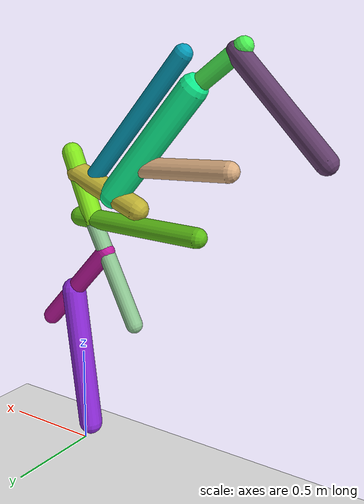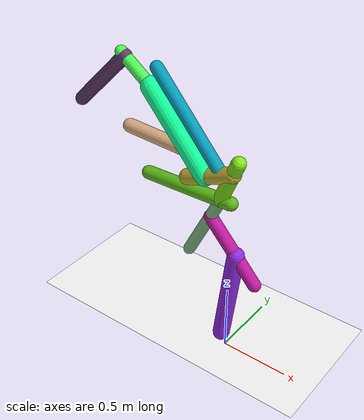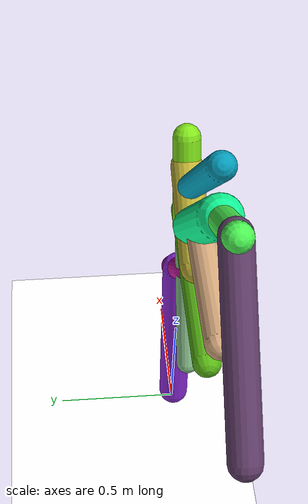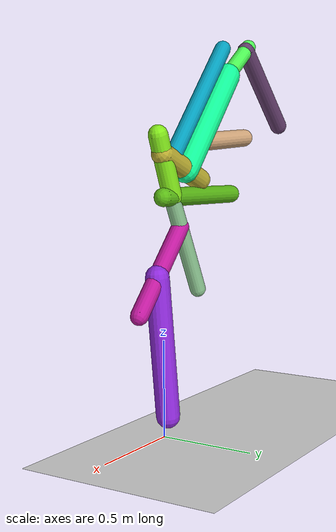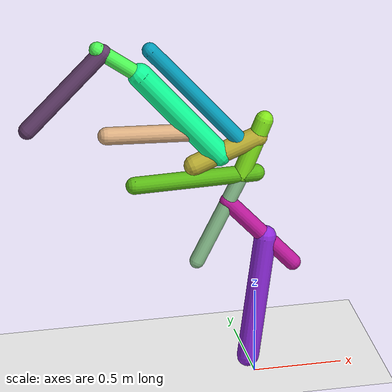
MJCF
<mujoco model="morphology">
  <option timestep="0.01"/>
  <default>
    <default class="/"/>
    <default class="0/"/>
    <default class="0/1/"/>
    <default class="0/1/2/"/>
    <default class="0/1/2/3/"/>
    <default class="0/1/2/4/"/>
    <default class="0/1/2/4/5/"/>
    <default class="0/1/2/4/5/6/"/>
    <default class="0/1/2/4/7/"/>
    <default class="0/8/"/>
    <default class="0/8/9/"/>
    <default class="0/8/9/10/"/>
  </default>
  <asset>
    <texture name="texplane" type="2d" builtin="checker" rgb1="0.10000000000000001 0.20000000000000001 0.29999999999999999" rgb2="0.20000000000000001 0.29999999999999999 0.40000000000000002" width="300" height="300"/>
    <material name="MatPlane" class="/" texture="texplane" texrepeat="20 20" specular="1" shininess="1" reflectance="0.5"/>
  </asset>
  <worldbody>
    <light name="//unnamed_light_0" class="/" directional="true" pos="0 0 1.5" dir="0 0 -1.3" cutoff="100" exponent="1" diffuse="1 1 1" specular="0.10000000000000001 0.10000000000000001 0.10000000000000001"/>
    <geom name="ground" class="/" type="plane" size="15 15 0.5" material="MatPlane" rgba="1 1 1 1"/>
    <site name="body" class="/" size="9.9999999999999995e-07 9.9999999999999995e-07 9.9999999999999995e-07" pos="0 0 1.2290807723999024"/>
    <body pos="0 0 1.2290807723999024" name="0/">
      <joint name="0/rootx/" class="/" type="slide" axis="1 0 0" limited="false" stiffness="0" armature="0" damping="0"/>
      <joint name="0/rootz/" class="/" type="slide" axis="0 0 1" limited="false" stiffness="0" armature="0" damping="0"/>
      <joint name="0/rooty/" class="/" type="hinge" axis="0 1 0" limited="false" stiffness="0" armature="0" damping="0"/>
      <geom name="0/geom" class="0/" type="capsule" contype="1" conaffinity="1" condim="3" size="0.048319554319540423" rgba="0.35576779238556178 0.72595017126344241 0.084409259810621529 1" friction="0.59999999999999998 0.10000000000000001 0.10000000000000001" fromto="0 0 0 -0.67901038469300068 0 -0.013148302453991567"/>
      <site name="0/end0" class="0/" size="0.0050000000000000001" pos="-0.67901038469300068 0 -0.013148302453991567"/>
      <site name="0/attach1" class="0/" size="9.9999999999999995e-07 9.9999999999999995e-07 9.9999999999999995e-07" pos="-0.083013045064329785 0 -0.0016074579251481233"/>
      <body pos="-0.083013045064329785 0 -0.0016074579251481233" name="0/1/">
        <geom name="0/1/geom" class="0/1/" type="capsule" contype="1" conaffinity="1" condim="3" size="0.050321376603639834" rgba="0.50986025282590974 0.9011389572687305 0.10339937053028847 1" friction="0.59999999999999998 0.10000000000000001 0.10000000000000001" fromto="0 0 0 0.12706588623334947 0 0.31361958927818678"/>
        <site name="0/1/end1" class="0/1/" size="0.0050000000000000001" pos="0.12706588623334947 0 0.31361958927818678"/>
        <site name="0/1/attach2" class="0/1/" size="9.9999999999999995e-07 9.9999999999999995e-07 9.9999999999999995e-07" pos="0.088313423870626309 0 0.2179721130752007"/>
        <body pos="0.088313423870626309 0 0.2179721130752007" name="0/1/2/">
          <joint name="0/1/2/joint/" class="0/1/" type="hinge" axis="0 1 0" limited="true" range="-53.446397081931188 53.446397081931188"/>
          <geom name="0/1/2/geom" class="0/1/2/" type="capsule" contype="1" conaffinity="1" condim="3" size="0.057435612012338919" rgba="0.74162066372640223 0.6874353247544629 0.1993417120017914 1" friction="0.59999999999999998 0.10000000000000001 0.10000000000000001" fromto="0 0 0 -0.35144873465990556 0 -0.13883899029156277"/>
          <site name="0/1/2/end2" class="0/1/2/" size="0.0050000000000000001" pos="-0.35144873465990556 0 -0.13883899029156277"/>
          <site name="0/1/2/attach3" class="0/1/2/" size="9.9999999999999995e-07 9.9999999999999995e-07 9.9999999999999995e-07" pos="-0.07970033426210979 0 -0.031485428295991415"/>
          <body pos="-0.07970033426210979 0 -0.031485428295991415" name="0/1/2/3/">
            <joint name="0/1/2/3/joint/" class="0/1/2/" type="hinge" axis="0 1 0" limited="true" range="-39.154495988855018 39.154495988855018"/>
            <geom name="0/1/2/3/geom" class="0/1/2/3/" type="capsule" contype="1" conaffinity="1" condim="3" size="0.044028028088819365" rgba="0.01482074405790812 0.6141069538759647 0.72888427348315243 1" friction="0.59999999999999998 0.10000000000000001 0.10000000000000001" fromto="0 0 0 -0.51469566091637708 0 0.59634295035730478"/>
            <site name="0/1/2/3/end3" class="0/1/2/3/" size="0.0050000000000000001" pos="-0.51469566091637708 0 0.59634295035730478"/>
          </body>
          <site name="0/1/2/attach4" class="0/1/2/" size="9.9999999999999995e-07 9.9999999999999995e-07 9.9999999999999995e-07" pos="-0.2142719543974243 0 -0.084647628124558089"/>
          <body pos="-0.2142719543974243 0 -0.084647628124558089" name="0/1/2/4/">
            <joint name="0/1/2/4/joint/" class="0/1/2/" type="hinge" axis="0 1 0" limited="true" range="-61.657352606252488 61.657352606252488"/>
            <geom name="0/1/2/4/geom" class="0/1/2/4/" type="capsule" contype="1" conaffinity="1" condim="3" size="0.068294231781972317" rgba="0.061303316188581869 0.98516712038563803 0.5906870361150911 1" friction="0.59999999999999998 0.10000000000000001 0.10000000000000001" fromto="0 0 0 -0.43467459664422015 0 0.50751606612288169"/>
            <site name="0/1/2/4/end4" class="0/1/2/4/" size="0.0050000000000000001" pos="-0.43467459664422015 0 0.50751606612288169"/>
            <site name="0/1/2/4/attach5" class="0/1/2/4/" size="9.9999999999999995e-07 9.9999999999999995e-07 9.9999999999999995e-07" pos="-0.43363315717004181 0 0.50630010533492542"/>
            <body pos="-0.43363315717004181 0 0.50630010533492542" name="0/1/2/4/5/">
              <joint name="0/1/2/4/5/joint/" class="0/1/2/4/" type="hinge" axis="0 1 0" limited="true" range="-33.993774893783929 33.993774893783929"/>
              <geom name="0/1/2/4/5/geom" class="0/1/2/4/5/" type="capsule" contype="1" conaffinity="1" condim="3" size="0.042666226415282969" rgba="0.29684240615926771 0.96625486527423798 0.32562907885267978 1" friction="0.59999999999999998 0.10000000000000001 0.10000000000000001" fromto="0 0 0 -0.2365970259354796 0 0.17454384920347932"/>
              <site name="0/1/2/4/5/end5" class="0/1/2/4/5/" size="0.0050000000000000001" pos="-0.2365970259354796 0 0.17454384920347932"/>
              <site name="0/1/2/4/5/attach6" class="0/1/2/4/5/" size="9.9999999999999995e-07 9.9999999999999995e-07 9.9999999999999995e-07" pos="-0.20737046482984894 0 0.15298264633464609"/>
              <body pos="-0.20737046482984894 0 0.15298264633464609" name="0/1/2/4/5/6/">
                <joint name="0/1/2/4/5/6/joint/" class="0/1/2/4/5/" type="hinge" axis="0 1 0" limited="true" range="-62.115795025787804 62.115795025787804"/>
                <geom name="0/1/2/4/5/6/geom" class="0/1/2/4/5/6/" type="capsule" contype="1" conaffinity="1" condim="3" size="0.048385690586880123" rgba="0.37816165489381837 0.23618716301444187 0.41188367350100319 1" friction="0.59999999999999998 0.10000000000000001 0.10000000000000001" fromto="0 0 0 -0.41476974845829645 0 -0.41768330315242408"/>
                <site name="0/1/2/4/5/6/end6" class="0/1/2/4/5/6/" size="0.0050000000000000001" pos="-0.41476974845829645 0 -0.41768330315242408"/>
              </body>
            </body>
            <site name="0/1/2/4/attach7" class="0/1/2/4/" size="9.9999999999999995e-07 9.9999999999999995e-07 9.9999999999999995e-07" pos="-0.12253175890061482 0 0.14306526475771295"/>
            <body pos="-0.12253175890061482 0 0.14306526475771295" name="0/1/2/4/7/">
              <joint name="0/1/2/4/7/joint/" class="0/1/2/4/" type="hinge" axis="0 1 0" limited="true" range="-50.421079630648954 50.421079630648954"/>
              <geom name="0/1/2/4/7/geom" class="0/1/2/4/7/" type="capsule" contype="1" conaffinity="1" condim="3" size="0.048786231812676509" rgba="0.85251948844571779 0.67624721697981549 0.49949763007549985 1" friction="0.59999999999999998 0.10000000000000001 0.10000000000000001" fromto="0 0 0 -0.49944742098326628 0 0.024640235209572703"/>
              <site name="0/1/2/4/7/end7" class="0/1/2/4/7/" size="0.0050000000000000001" pos="-0.49944742098326628 0 0.024640235209572703"/>
            </body>
          </body>
        </body>
      </body>
      <site name="0/attach8" class="0/" size="9.9999999999999995e-07 9.9999999999999995e-07 9.9999999999999995e-07" pos="-0.077170679787712124 0 -0.0014943268340258597"/>
      <body pos="-0.077170679787712124 0 -0.0014943268340258597" name="0/8/">
        <joint name="0/8/joint/" class="0/" type="hinge" axis="0 1 0" limited="true" range="-56.6897997790566 56.6897997790566"/>
        <geom name="0/8/geom" class="0/8/" type="capsule" contype="1" conaffinity="1" condim="3" size="0.041928676575135854" rgba="0.54257307204724348 0.76284368596431185 0.56073323200399083 1" friction="0.59999999999999998 0.10000000000000001 0.10000000000000001" fromto="0 0 0 -0.25243889989434004 0 -0.50458373792166777"/>
        <site name="0/8/end8" class="0/8/" size="0.0050000000000000001" pos="-0.25243889989434004 0 -0.50458373792166777"/>
        <site name="0/8/attach9" class="0/8/" size="9.9999999999999995e-07 9.9999999999999995e-07 9.9999999999999995e-07" pos="-0.079927979093250043 0 -0.15976285141583788"/>
        <body pos="-0.079927979093250043 0 -0.15976285141583788" name="0/8/9/">
          <joint name="0/8/9/joint/" class="0/8/" type="hinge" axis="0 1 0" limited="true" range="-47.719675357142876 47.719675357142876"/>
          <geom name="0/8/9/geom" class="0/8/9/" type="capsule" contype="1" conaffinity="1" condim="3" size="0.045993809345709236" rgba="0.74630732336633632 0.093714522318671944 0.61443481047823223 1" friction="0.59999999999999998 0.10000000000000001 0.10000000000000001" fromto="0 0 0 0.37007290386480607 0 -0.40854715582505957"/>
          <site name="0/8/9/end9" class="0/8/9/" size="0.0050000000000000001" pos="0.37007290386480607 0 -0.40854715582505957"/>
          <site name="0/8/9/attach10" class="0/8/9/" size="9.9999999999999995e-07 9.9999999999999995e-07 9.9999999999999995e-07" pos="0.21352423349084565 0 -0.23572306262195097"/>
          <body pos="0.21352423349084565 0 -0.23572306262195097" name="0/8/9/10/">
            <joint name="0/8/9/10/joint/" class="0/8/9/" type="hinge" axis="0 1 0" limited="true" range="-59.325801768277934 59.325801768277934"/>
            <geom name="0/8/9/10/geom" class="0/8/9/10/" type="capsule" contype="1" conaffinity="1" condim="3" size="0.0616212170751433" rgba="0.55995496418054558 0.16456659051565659 0.86143225971108317 1" friction="0.59999999999999998 0.10000000000000001 0.10000000000000001" fromto="0 0 0 -0.093909495631177453 0 -0.73210052905661815"/>
            <site name="0/8/9/10/end10" class="0/8/9/10/" size="0.0050000000000000001" pos="-0.093909495631177453 0 -0.73210052905661815"/>
          </body>
        </body>
      </body>
      <camera name="0/side" class="0/" mode="trackcom" pos="0.40000000000000002 -4 0.20000000000000001" quat="0.70699999999999996 0.70699999999999996 0 0"/>
    </body>
  </worldbody>
  <actuator>
    <motor name="0/1/2/motor" class="0/1/2/" ctrllimited="true" ctrlrange="-1 1" gear="71" joint="0/1/2/joint/"/>
    <motor name="0/1/2/3/motor" class="0/1/2/3/" ctrllimited="true" ctrlrange="-1 1" gear="52" joint="0/1/2/3/joint/"/>
    <motor name="0/1/2/4/motor" class="0/1/2/4/" ctrllimited="true" ctrlrange="-1 1" gear="64" joint="0/1/2/4/joint/"/>
    <motor name="0/1/2/4/5/motor" class="0/1/2/4/5/" ctrllimited="true" ctrlrange="-1 1" gear="68" joint="0/1/2/4/5/joint/"/>
    <motor name="0/1/2/4/5/6/motor" class="0/1/2/4/5/6/" ctrllimited="true" ctrlrange="-1 1" gear="63" joint="0/1/2/4/5/6/joint/"/>
    <motor name="0/1/2/4/7/motor" class="0/1/2/4/7/" ctrllimited="true" ctrlrange="-1 1" gear="89" joint="0/1/2/4/7/joint/"/>
    <motor name="0/8/motor" class="0/8/" ctrllimited="true" ctrlrange="-1 1" gear="73" joint="0/8/joint/"/>
    <motor name="0/8/9/motor" class="0/8/9/" ctrllimited="true" ctrlrange="-1 1" gear="85" joint="0/8/9/joint/"/>
    <motor name="0/8/9/10/motor" class="0/8/9/10/" ctrllimited="true" ctrlrange="-1 1" gear="65" joint="0/8/9/10/joint/"/>
  </actuator>
  <sensor>
    <subtreelinvel name="velocity" body="0/"/>
  </sensor>
</mujoco>
